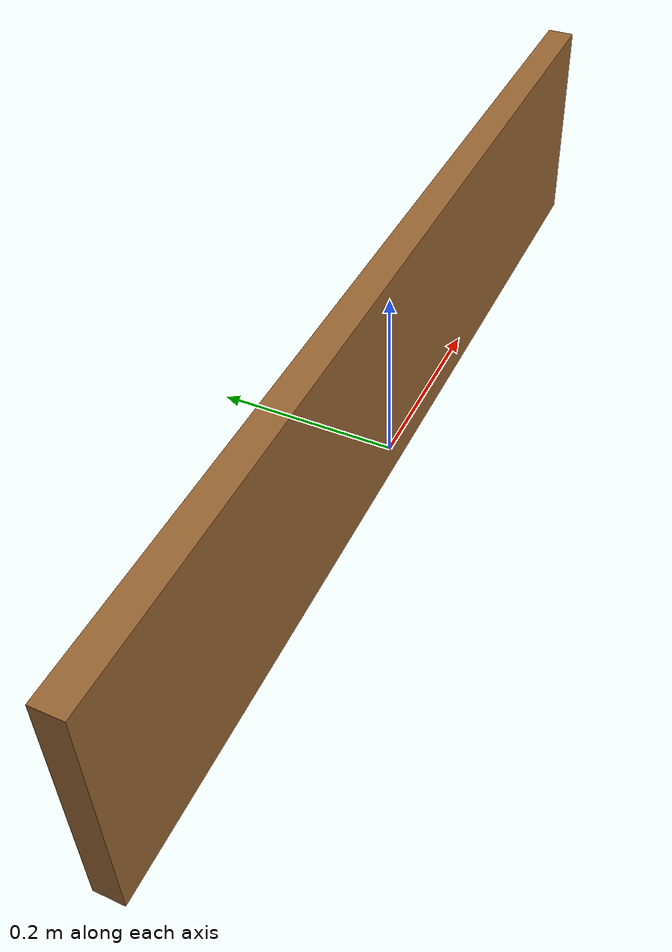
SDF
<?xml version="1.0"?>
<sdf version="1.6">
<model name="wooden_wall_1050_30_250">
  <static>false</static>
    <link name='wall'>
      <pose frame=''>0 0 0.125 0 0 0</pose>
      <collision name='coll'>
        <geometry>
          <box>
            <size>1.05 0.03 0.25</size>
          </box>
        </geometry>
      </collision>
      <visual name='vis'>
        <geometry>
          <box>
            <size>1.05 0.03 0.25</size>
          </box>
        </geometry>
        <material>
          <diffuse>0.6 0.4 0.2 1</diffuse>
          <pbr>
            <metal>
              <albedo_map>materials/textures/wood.jpg</albedo_map>
              <metalness>0.1</metalness>
              <roughness>0.8</roughness>
            </metal>
          </pbr>
        </material>
      </visual>
    </link>
  </model>
</sdf>
